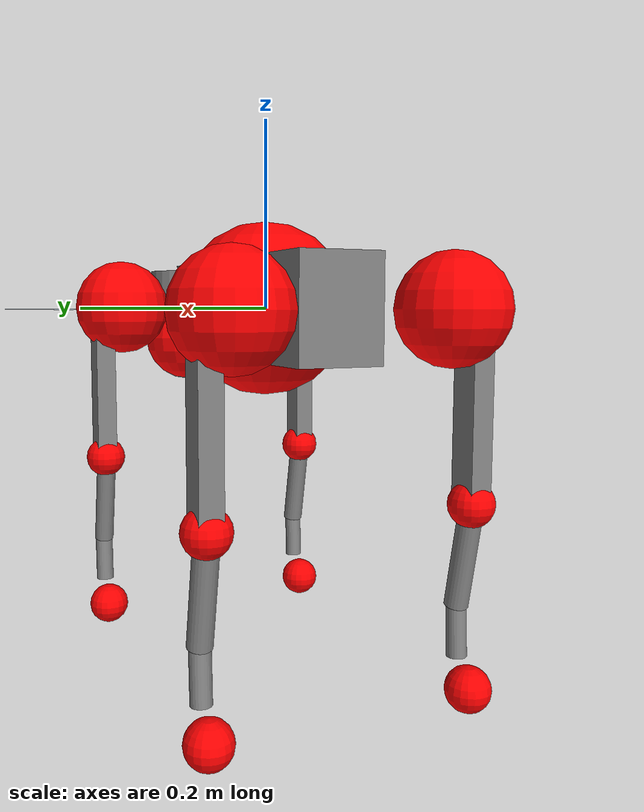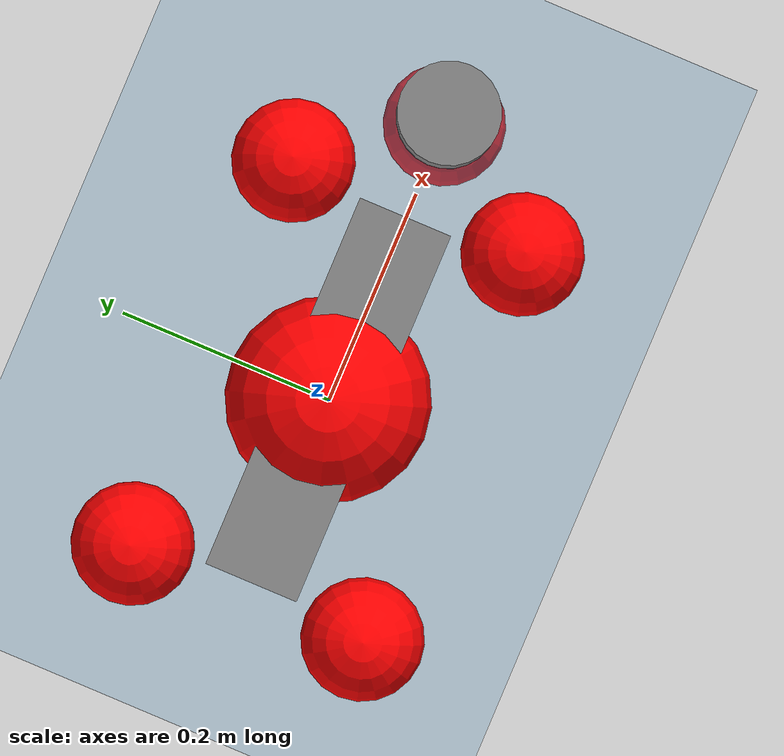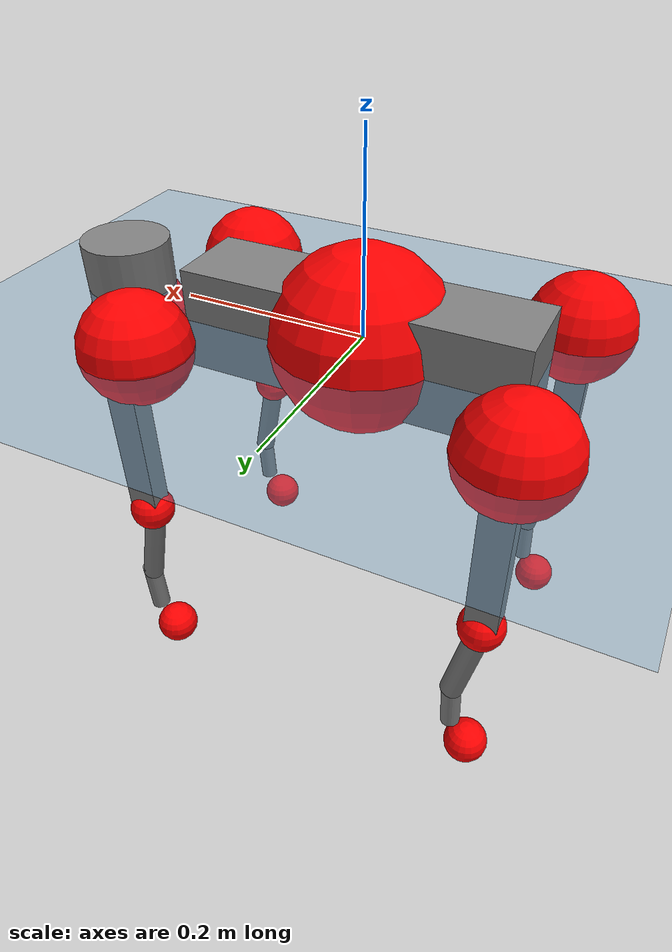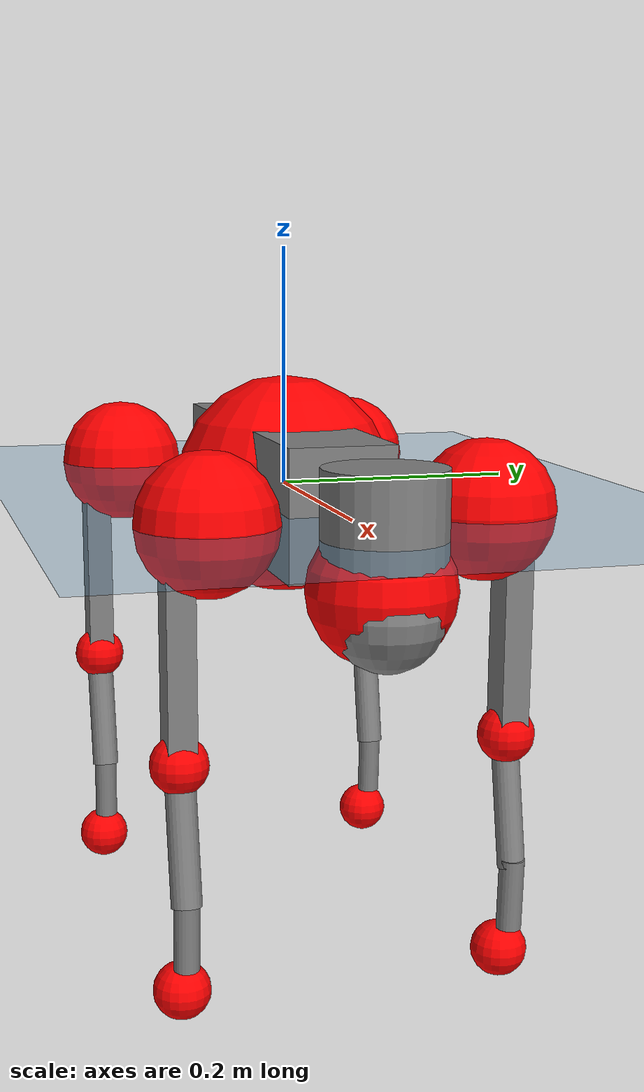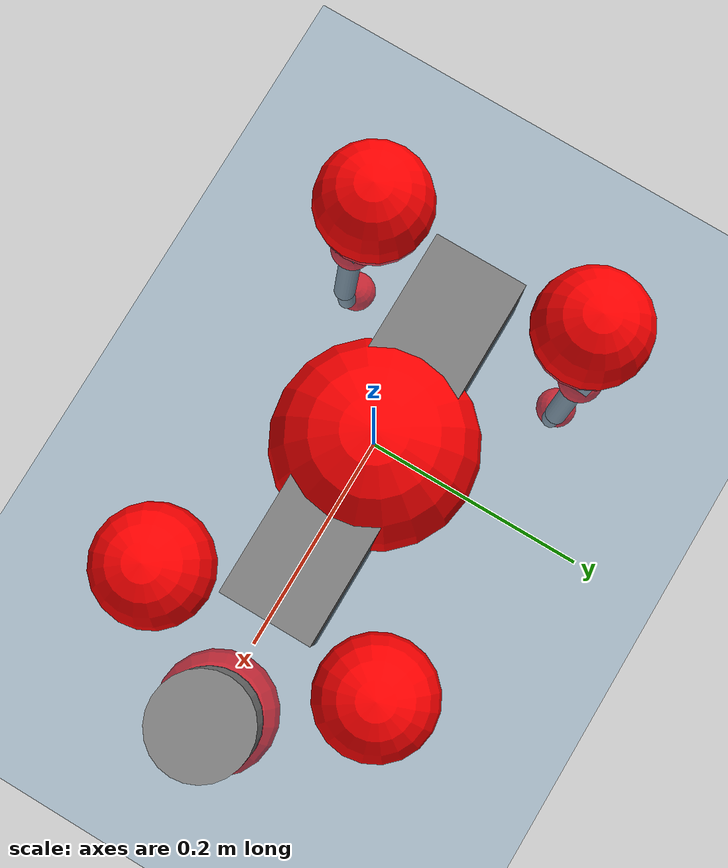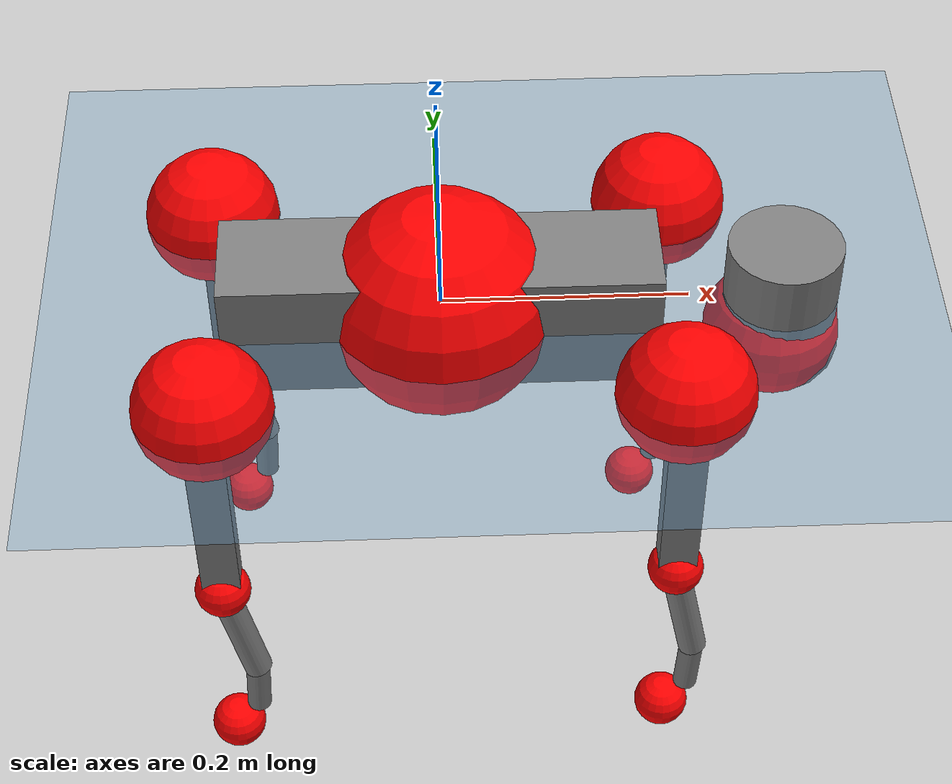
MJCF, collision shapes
<mujoco model="go2">
  <compiler angle="radian" assetdir="assets" balanceinertia="true" inertiafromgeom="false"/>

  <option timestep="0.005" density="1.2" viscosity="2e-05"/>

  <size nkey="1"/>

  <visual>
    <quality shadowsize="8192"/>
    <map shadowclip="0.5"/>
  </visual>

  <default>
    <default class="/">
      <geom contype="0" conaffinity="0" group="1" solref="-1000 -80"/>
      <site size="0.01 0.005 0.005" group="5"/>
      <general forcelimited="true" biastype="affine" gainprm="20" biasprm="0 -20 -0.5"/>
      <default class="go2">
        <joint armature="0.01" damping="0.01" frictionloss="0.2"/>
        <geom condim="1" margin="0.001"/>
        <default class="visual">
          <geom type="mesh" group="2"/>
        </default>
        <default class="collision">
          <geom group="3"/>
          <default class="foot">
            <geom size="0.022 0 0" condim="6" priority="1" friction="0.8 0.02 0.01" solimp="0.015 1 0.022"/>
          </default>
        </default>
        <default class="reward_collision_sphere">
          <geom group="5" rgba="1 0 0 1"/>
        </default>
      </default>
    </default>
  </default>

  <asset>
    <texture type="skybox" colorspace="auto" name="//unnamed_texture_0" builtin="gradient" rgb1="0.95 0.95 0.95" rgb2="0.95 0.95 0.95" width="100" height="600"/>
    <texture type="2d" colorspace="auto" name="texplane" builtin="checker" rgb1="0.345 0.575 0.748" rgb2="0.345 0.575 0.748" markrgb="1 1 1" width="512" height="512"/>
    <material name="MatPlane" class="/" texture="texplane" texuniform="true" texrepeat="2 2" specular="0.9"/>
    <material name="metal" class="/" rgba="0.9 0.95 0.95 1"/>
    <material name="black" class="/" rgba="0 0 0 1"/>
    <material name="white" class="/"/>
    <material name="gray" class="/" rgba="0.671705 0.692426 0.77427 1"/>
    <mesh name="base_0" class="/" file="base_0.obj"/>
    <mesh name="base_1" class="/" file="base_1.obj"/>
    <mesh name="base_2" class="/" file="base_2.obj"/>
    <mesh name="base_3" class="/" file="base_3.obj"/>
    <mesh name="base_4" class="/" file="base_4.obj"/>
    <mesh name="hip_0" class="/" file="hip_0.obj"/>
    <mesh name="hip_1" class="/" file="hip_1.obj"/>
    <mesh name="thigh_0" class="/" file="thigh_0.obj"/>
    <mesh name="thigh_1" class="/" file="thigh_1.obj"/>
    <mesh name="thigh_mirror_0" class="/" file="thigh_mirror_0.obj"/>
    <mesh name="thigh_mirror_1" class="/" file="thigh_mirror_1.obj"/>
    <mesh name="calf_0" class="/" file="calf_0.obj"/>
    <mesh name="calf_1" class="/" file="calf_1.obj"/>
    <mesh name="calf_mirror_0" class="/" file="calf_mirror_0.obj"/>
    <mesh name="calf_mirror_1" class="/" file="calf_mirror_1.obj"/>
    <mesh name="foot" class="/" file="foot.obj"/>
  </asset>

  <worldbody>
    <geom name="floor" class="/" size="100 100 0.125" type="plane" group="0" material="MatPlane"/>
    <light name="toplight_shadow" class="/" pos="0 0 5" dir="0.0990148 0.0990148 -0.990148" type="directional" ambient="0.04 0.04 0.04" diffuse="0.55 0.55 0.55" specular="0.12 0.12 0.12"/>
    <light name="toplight_fill" class="/" pos="0 0 5" dir="0.0990148 0.0990148 -0.990148" type="directional" castshadow="false" ambient="0.04 0.04 0.04" diffuse="0.3 0.3 0.3" specular="0.08 0.08 0.08"/>
    <body name="trunk" childclass="go2" pos="8.32129e-05 0.000779008 -0.000299159" quat="1 1.07145e-05 9.90216e-06 1.27691e-05">
      <inertial pos="0.0204129 0.000585576 -0.0047633" quat="-0.00308642 0.713094 -3.76942e-05 0.701061" mass="5.63718" diaginertia="0.0899224 0.0782376 0.0125111"/>
      <joint name="//unnamed_joint_0" type="free" armature="0" damping="0" frictionloss="0"/>
      <geom name="//unnamed_geom_1" class="visual" material="black" mesh="base_0"/>
      <geom name="//unnamed_geom_2" class="visual" material="black" mesh="base_1"/>
      <geom name="//unnamed_geom_3" class="visual" material="black" mesh="base_2"/>
      <geom name="//unnamed_geom_4" class="visual" material="white" mesh="base_3"/>
      <geom name="//unnamed_geom_5" class="visual" material="gray" mesh="base_4"/>
      <geom name="trunk_1" class="collision" size="0.175101 0.0435194 0.053061" type="box"/>
      <geom name="trunk_2" class="collision" size="0.0465448 0.0418903" pos="0.274789 0 0.00874126" type="cylinder"/>
      <geom name="trunk_3" class="collision" size="0.0437521" pos="0.282502 0 -0.0524475"/>
      <geom name="//unnamed_geom_9" class="reward_collision_sphere" size="0.0930896"/>
      <geom name="//unnamed_geom_10" class="reward_collision_sphere" size="0.0558537" pos="0.269968 0 -0.0393357"/>
      <site name="imu" pos="-0.0287652 -0.0034227 0.0409" size="0.00930896"/>
      <camera name="track" pos="0 -1.90878 0" quat="0.707107 0.707107 0 0" mode="trackcom"/>
      <camera name="ego_camera" pos="0.300822 0 0.0393357" quat="-0.5 -0.5 0.5 0.5"/>
      <body name="FL_hip" pos="0.185019 0.0452363 0.00186162" quat="1 -0.000254087 9.73546e-05 0.000107678">
        <inertial pos="-0.00513618 0.00200011 -0.000826597" quat="0.49646 0.498954 0.506673 0.49785" mass="0.550948" diaginertia="0.000736358 0.000477776 0.00024579"/>
        <joint name="FL_hip_joint" pos="0 0 0" axis="0.999996 -0.00263043 -0.0010665" stiffness="0.00201404" range="-1.03616 1.03933" armature="0.0093831" damping="0.00625619" frictionloss="0.17823"/>
        <geom name="//unnamed_geom_11" class="visual" material="metal" mesh="hip_0"/>
        <geom name="//unnamed_geom_12" class="visual" material="gray" mesh="hip_1"/>
        <geom name="//unnamed_geom_13" class="collision" size="0.0428212 0.0186179" pos="0 0.0763511 0" quat="0.707107 0.707107 0 0" type="cylinder"/>
        <geom name="//unnamed_geom_14" class="reward_collision_sphere" size="0.0558537" pos="0 0.0668072 0"/>
        <body name="FL_thigh" pos="-0.000668719 0.0914822 0.00144877" quat="1 -0.000312973 0.000292616 0.000223881">
          <inertial pos="-0.00483033 -0.0218561 -0.0283146" quat="0.830772 0.0841128 -0.0206664 0.549832" mass="0.928708" diaginertia="0.00493884 0.00462077 0.000446108"/>
          <joint name="FL_thigh_joint" pos="0 0 0" axis="0.000140605 1 0.000925603" stiffness="0.00542515" range="-1.57775 3.49182" armature="0.00899483" damping="0.00811946" frictionloss="0.187789"/>
          <geom name="//unnamed_geom_15" class="visual" material="metal" mesh="thigh_0"/>
          <geom name="//unnamed_geom_16" class="visual" material="gray" mesh="thigh_1"/>
          <geom name="//unnamed_geom_17" class="collision" size="0.0991404 0.0114035 0.0158252" pos="0 0 -0.0930944" quat="0.707107 0 0.707107 0" type="box"/>
          <body name="FL_calf" pos="-0.00132826 -0.000661692 -0.186291" quat="1 -7.06422e-05 -0.000245622 -0.000122975">
            <inertial pos="0.00531594 -0.000443762 -0.123517" quat="0.71065 0.00149374 -0.00423562 0.703532" mass="0.194872" diaginertia="0.00125228 0.00115767 2.70292e-05"/>
            <joint name="FL_calf_joint" pos="0 0 0" axis="-0.00550473 0.999984 0.000897231" stiffness="0.000457658" range="-2.73042 -0.840003" armature="0.00968917" damping="0.00198584" frictionloss="0.186426"/>
            <geom name="//unnamed_geom_18" class="visual" material="gray" mesh="calf_0"/>
            <geom name="//unnamed_geom_19" class="visual" material="black" mesh="calf_1"/>
            <geom name="FL_calf0" class="collision" size="0.0111707 0.0558537" pos="0.00771337 0 -0.0524475" quat="0.994493 0 -0.104807 0" type="cylinder"/>
            <geom name="//unnamed_geom_21" class="collision" size="0.0102399 0.0302541" pos="0.0192834 0 -0.129371" quat="0.999688 0 0.0249974 0" type="cylinder"/>
            <geom name="//unnamed_geom_22" class="visual" pos="0 0 -0.186189" quat="1 0 0 0" material="black" mesh="foot"/>
            <geom name="FL_foot" class="foot" size="0.0179571" pos="-0.00192834 0 -0.186189"/>
            <geom name="//unnamed_geom_24" class="reward_collision_sphere" size="0.0232724"/>
            <geom name="//unnamed_geom_25" class="reward_collision_sphere" size="0.0232724" pos="-0.00192834 0 -0.186189"/>
            <site name="FL_foot" class="foot" pos="-0.00192834 0 -0.186189" size="0.00930896"/>
          </body>
        </body>
      </body>
      <body name="FR_hip" pos="0.187549 -0.0428452 0.00019745" quat="1 -1.13929e-05 6.81551e-06 1.17022e-06">
        <inertial pos="-0.005446 -0.00170106 6.12821e-05" quat="0.498204 0.504997 0.499383 0.49738" mass="0.547917" diaginertia="0.000730182 0.000466681 0.000241874"/>
        <joint name="FR_hip_joint" pos="0 0 0" axis="0.999983 0.00381052 -0.0044194" stiffness="0.00433875" range="-1.05079 1.05393" armature="0.00952792" damping="0.0142407" frictionloss="0.188493"/>
        <geom name="//unnamed_geom_26" class="visual" pos="0 6.99223e-10 2.99911e-08" quat="4.63268e-05 1 0 0" material="metal" mesh="hip_0"/>
        <geom name="//unnamed_geom_27" class="visual" pos="0 1.13352e-09 -7.41795e-08" quat="4.63268e-05 1 0 0" material="gray" mesh="hip_1"/>
        <geom name="//unnamed_geom_28" class="collision" size="0.0428212 0.0186179" pos="0 -0.0763511 0" quat="0.707107 0.707107 0 0" type="cylinder"/>
        <geom name="//unnamed_geom_29" class="reward_collision_sphere" size="0.0558537" pos="0 -0.0668072 0"/>
        <body name="FR_thigh" pos="0.000794755 -0.0904693 0.000257622" quat="1 -1.87696e-05 0.000192586 2.91328e-05">
          <inertial pos="-0.00396951 0.0210941 -0.0283596" quat="0.548597 -0.0194151 0.0838588 0.831644" mass="0.912189" diaginertia="0.00490253 0.00458929 0.000444532"/>
          <joint name="FR_thigh_joint" pos="0 0 0" axis="0.0011963 -0.999999 -0.000276897" range="-3.49381 1.5688" armature="0.00917513" damping="0.0158704" frictionloss="0.185963"/>
          <geom name="//unnamed_geom_30" class="visual" material="metal" mesh="thigh_mirror_0"/>
          <geom name="//unnamed_geom_31" class="visual" material="gray" mesh="thigh_mirror_1"/>
          <geom name="//unnamed_geom_32" class="collision" size="0.0991404 0.0114035 0.0158252" pos="0 0 -0.0930944" quat="0.707107 0 0.707107 0" type="box"/>
          <body name="FR_calf" pos="4.89656e-05 -0.00011437 -0.18506" quat="1 7.47164e-05 -0.000113623 0.000195748">
            <inertial pos="0.00586109 0.000737116 -0.124765" quat="0.703411 -0.00788788 -0.000544838 0.71074" mass="0.193903" diaginertia="0.00124769 0.00116002 2.72386e-05"/>
            <joint name="FR_calf_joint" pos="0 0 0" axis="-0.00336582 -0.999994 -0.000631999" range="0.837998 2.72028" armature="0.00927233" damping="0.0100868" frictionloss="0.191148"/>
            <geom name="//unnamed_geom_33" class="visual" material="gray" mesh="calf_mirror_0"/>
            <geom name="//unnamed_geom_34" class="visual" material="black" mesh="calf_mirror_1"/>
            <geom name="FR_calf0" class="collision" size="0.0121016 0.0558537" pos="0.00964172 0 -0.0524475" quat="0.995004 0 -0.0998334 0" type="cylinder"/>
            <geom name="//unnamed_geom_36" class="collision" size="0.0102399 0.0302541" pos="0.0192834 0 -0.129371" quat="0.999688 0 0.0249974 0" type="cylinder"/>
            <geom name="//unnamed_geom_37" class="visual" pos="0 0 -0.186189" quat="1 0 0 0" material="black" mesh="foot"/>
            <geom name="FR_foot" class="foot" size="0.0221944" pos="-0.00192834 0 -0.186189"/>
            <geom name="//unnamed_geom_39" class="reward_collision_sphere" size="0.0232724"/>
            <geom name="//unnamed_geom_40" class="reward_collision_sphere" size="0.0232724" pos="-0.00192834 0 -0.186189"/>
            <site name="FR_foot" class="foot" pos="-0.00192834 0 -0.186189" size="0.00930896"/>
          </body>
        </body>
      </body>
      <body name="RL_hip" pos="-0.18692 0.0443054 -0.00107675" quat="1 -0.000314535 -4.6145e-05 0.00021101">
        <inertial pos="0.00519718 0.00291843 -0.000682595" quat="0.504742 0.500066 0.497015 0.498141" mass="0.549404" diaginertia="0.0007368 0.000471454 0.000245146"/>
        <joint name="RL_hip_joint" pos="0 0 0" axis="-0.999783 -0.0160227 -0.0132995" range="-1.04012 1.05079" armature="0.0092946" damping="0.0143279" frictionloss="0.189038"/>
        <geom name="//unnamed_geom_41" class="visual" pos="-7.84443e-10 0 -1.53769e-07" quat="4.63268e-05 0 1 0" material="metal" mesh="hip_0"/>
        <geom name="//unnamed_geom_42" class="visual" pos="-1.27168e-09 0 -1.36371e-07" quat="4.63268e-05 0 1 0" material="gray" mesh="hip_1"/>
        <geom name="//unnamed_geom_43" class="collision" size="0.0428212 0.0186179" pos="0 0.0763511 0" quat="0.707107 0.707107 0 0" type="cylinder"/>
        <geom name="//unnamed_geom_44" class="reward_collision_sphere" size="0.0558537" pos="0 0.0668072 0"/>
        <body name="RL_thigh" pos="0.000514684 0.0909529 -0.000692922" quat="1 -2.99978e-05 0.000171065 -8.16388e-05">
          <inertial pos="-0.0033578 -0.0207324 -0.0285192" quat="0.829559 0.0813688 -0.0211812 0.552053" mass="0.937183" diaginertia="0.00493728 0.00462982 0.000451037"/>
          <joint name="RL_thigh_joint" pos="0 0 0" axis="-0.000131664 0.999999 -0.00118724" stiffness="0.000419056" range="-0.506858 4.52442" armature="0.00926974" damping="0.0108534" frictionloss="0.189023"/>
          <geom name="//unnamed_geom_45" class="visual" material="metal" mesh="thigh_0"/>
          <geom name="//unnamed_geom_46" class="visual" material="gray" mesh="thigh_1"/>
          <geom name="//unnamed_geom_47" class="collision" size="0.0991404 0.0114035 0.0158252" pos="0 0 -0.0930944" quat="0.707107 0 0.707107 0" type="box"/>
          <body name="RL_calf" pos="0.000798615 -0.00114261 -0.186248" quat="1 1.8687e-05 -0.000132318 2.34059e-07">
            <inertial pos="0.00630813 -0.000653882 -0.123457" quat="0.710644 0.0013789 -0.00428667 0.703538" mass="0.190909" diaginertia="0.00122273 0.00114872 2.68446e-05"/>
            <joint name="RL_calf_joint" pos="0 0 0" axis="-0.00365271 0.999912 -0.0127922" range="-2.71643 -0.820399" armature="0.00938704" damping="0" frictionloss="0.1856"/>
            <geom name="//unnamed_geom_48" class="visual" material="gray" mesh="calf_0"/>
            <geom name="//unnamed_geom_49" class="visual" material="black" mesh="calf_1"/>
            <geom name="RL_calf0" class="collision" size="0.0121016 0.0558537" pos="0.00964172 0 -0.0524475" quat="0.995004 0 -0.0998334 0" type="cylinder"/>
            <geom name="//unnamed_geom_51" class="collision" size="0.0102399 0.0302541" pos="0.0192834 0 -0.129371" quat="0.999688 0 0.0249974 0" type="cylinder"/>
            <geom name="//unnamed_geom_52" class="visual" pos="0 0 -0.186189" quat="1 0 0 0" material="black" mesh="foot"/>
            <geom name="RL_foot" class="foot" size="0.0179081" pos="-0.00192834 0 -0.186189"/>
            <geom name="//unnamed_geom_54" class="reward_collision_sphere" size="0.0232724"/>
            <geom name="//unnamed_geom_55" class="reward_collision_sphere" size="0.0232724" pos="-0.00192834 0 -0.186189"/>
            <site name="RL_foot" class="foot" pos="-0.00192834 0 -0.186189" size="0.00930896"/>
          </body>
        </body>
      </body>
      <body name="RR_hip" pos="-0.185844 -0.0450839 -0.000397671" quat="1 4.33525e-05 -0.000228269 -7.89416e-05">
        <inertial pos="0.00553936 -0.00239616 0.000858374" quat="0.500627 0.497147 0.498606 0.503596" mass="0.542455" diaginertia="0.000722709 0.000468657 0.000242389"/>
        <joint name="RR_hip_joint" pos="0 0 0" axis="-1 7.10222e-05 6.75002e-05" range="-1.04224 1.05227" armature="0.00926901" damping="0.00683001" frictionloss="0.183498"/>
        <geom name="//unnamed_geom_56" class="visual" pos="7.84104e-10 6.99223e-10 -1.8376e-07" quat="2.14617e-09 4.63268e-05 4.63268e-05 -1" material="metal" mesh="hip_0"/>
        <geom name="//unnamed_geom_57" class="visual" pos="1.27251e-09 1.13352e-09 -6.21917e-08" quat="2.14617e-09 4.63268e-05 4.63268e-05 -1" material="gray" mesh="hip_1"/>
        <geom name="//unnamed_geom_58" class="collision" size="0.0428212 0.0186179" pos="0 -0.0763511 0" quat="0.707107 0.707107 0 0" type="cylinder"/>
        <geom name="//unnamed_geom_59" class="reward_collision_sphere" size="0.0558537" pos="0 -0.0668072 0"/>
        <body name="RR_thigh" pos="0.000311806 -0.0924916 -0.00181406" quat="1 1.68457e-05 -4.64566e-05 -0.000203744">
          <inertial pos="-0.00340952 0.0216279 -0.0294366" quat="0.551881 -0.0185173 0.0859995 0.82927" mass="0.93819" diaginertia="0.00498649 0.00467972 0.000452765"/>
          <joint name="RR_thigh_joint" pos="0 0 0" axis="0.000328295 -1 0.000298161" stiffness="0.000730734" range="-4.53886 0.509821" armature="0.00936712" damping="0.0139583" frictionloss="0.188055"/>
          <geom name="//unnamed_geom_60" class="visual" material="metal" mesh="thigh_mirror_0"/>
          <geom name="//unnamed_geom_61" class="visual" material="gray" mesh="thigh_mirror_1"/>
          <geom name="//unnamed_geom_62" class="collision" size="0.0991404 0.0114035 0.0158252" pos="0 0 -0.0930944" quat="0.707107 0 0.707107 0" type="box"/>
          <body name="RR_calf" pos="-0.000325168 -0.000499416 -0.186796" quat="1 0.000193896 -0.000249616 8.23701e-05">
            <inertial pos="0.00657388 0.000662175 -0.124114" quat="0.703833 -0.00424176 0.00154173 0.710351" mass="0.195159" diaginertia="0.00123877 0.00115275 2.7243e-05"/>
            <joint name="RR_calf_joint" pos="0 0 0" axis="0.00101748 -0.999999 3.81699e-08" stiffness="0.00183731" range="0.85293 2.72396" armature="0.00941173" damping="0.0115425" frictionloss="0.185332"/>
            <geom name="//unnamed_geom_63" class="visual" material="gray" mesh="calf_mirror_0"/>
            <geom name="//unnamed_geom_64" class="visual" material="black" mesh="calf_mirror_1"/>
            <geom name="RR_calf0" class="collision" size="0.0121016 0.0558537" pos="0.00964172 0 -0.0524475" quat="0.995004 0 -0.0998334 0" type="cylinder"/>
            <geom name="//unnamed_geom_66" class="collision" size="0.0102399 0.0302541" pos="0.0192834 0 -0.129371" quat="0.999688 0 0.0249974 0" type="cylinder"/>
            <geom name="//unnamed_geom_67" class="visual" pos="0 0 -0.186189" quat="1 0 0 0" material="black" mesh="foot"/>
            <geom name="RR_foot" class="foot" size="0.0216053" pos="-0.00192834 0 -0.186189"/>
            <geom name="//unnamed_geom_69" class="reward_collision_sphere" size="0.0232724"/>
            <geom name="//unnamed_geom_70" class="reward_collision_sphere" size="0.0232724" pos="-0.00192834 0 -0.186189"/>
            <site name="RR_foot" class="foot" pos="-0.00192834 0 -0.186189" size="0.00930896"/>
          </body>
        </body>
      </body>
    </body>
  </worldbody>

  <contact>
    <pair class="/" geom1="floor" geom2="FL_foot" name="//unnamed_contact_0"/>
    <pair class="/" geom1="floor" geom2="FR_foot" name="//unnamed_contact_1"/>
    <pair class="/" geom1="floor" geom2="RL_foot" name="//unnamed_contact_2"/>
    <pair class="/" geom1="floor" geom2="RR_foot" name="//unnamed_contact_3"/>
  </contact>

  <actuator>
    <general name="FL_hip" class="/" joint="FL_hip_joint" forcerange="-22.4435 22.4435" gainprm="18.707" biasprm="0 -18.707 -0.471029"/>
    <general name="FL_thigh" class="/" joint="FL_thigh_joint" forcerange="-22.7832 22.7832" gainprm="18.707" biasprm="0 -18.707 -0.471029"/>
    <general name="FL_calf" class="/" joint="FL_calf_joint" forcerange="-41.3401 41.3401" gainprm="18.707" biasprm="0 -18.707 -0.471029"/>
    <general name="FR_hip" class="/" joint="FR_hip_joint" forcerange="-21.996 21.996" gainprm="18.707" biasprm="0 -18.707 -0.471029"/>
    <general name="FR_thigh" class="/" joint="FR_thigh_joint" forcerange="-22.0295 22.0295" gainprm="18.707" biasprm="0 -18.707 -0.471029"/>
    <general name="FR_calf" class="/" joint="FR_calf_joint" forcerange="-40.7616 40.7616" gainprm="18.707" biasprm="0 -18.707 -0.471029"/>
    <general name="RL_hip" class="/" joint="RL_hip_joint" forcerange="-21.6719 21.6719" gainprm="18.707" biasprm="0 -18.707 -0.471029"/>
    <general name="RL_thigh" class="/" joint="RL_thigh_joint" forcerange="-22.0871 22.0871" gainprm="18.707" biasprm="0 -18.707 -0.471029"/>
    <general name="RL_calf" class="/" joint="RL_calf_joint" forcerange="-43.2608 43.2608" gainprm="18.707" biasprm="0 -18.707 -0.471029"/>
    <general name="RR_hip" class="/" joint="RR_hip_joint" forcerange="-21.8555 21.8555" gainprm="18.707" biasprm="0 -18.707 -0.471029"/>
    <general name="RR_thigh" class="/" joint="RR_thigh_joint" forcerange="-22.1687 22.1687" gainprm="18.707" biasprm="0 -18.707 -0.471029"/>
    <general name="RR_calf" class="/" joint="RR_calf_joint" forcerange="-42.0394 42.0394" gainprm="18.707" biasprm="0 -18.707 -0.471029"/>
  </actuator>

  <sensor>
    <gyro site="imu" name="imu_angular_velocity"/>
    <velocimeter site="imu" name="imu_linear_velocity"/>
    <framelinvel objtype="site" objname="FL_foot" name="FL_foot_global_linear_velocity"/>
    <framelinvel objtype="site" objname="FR_foot" name="FR_foot_global_linear_velocity"/>
    <framelinvel objtype="site" objname="RL_foot" name="RL_foot_global_linear_velocity"/>
    <framelinvel objtype="site" objname="RR_foot" name="RR_foot_global_linear_velocity"/>
  </sensor>

  <keyframe>
    <key name="home" qpos="0 0 0.325 1 0 0 0 0.1 0.8 -1.5 -0.1 -0.8 1.5 -0.1 0.8 -1.5 0.1 -0.8 1.5"/>
  </keyframe>
</mujoco>
